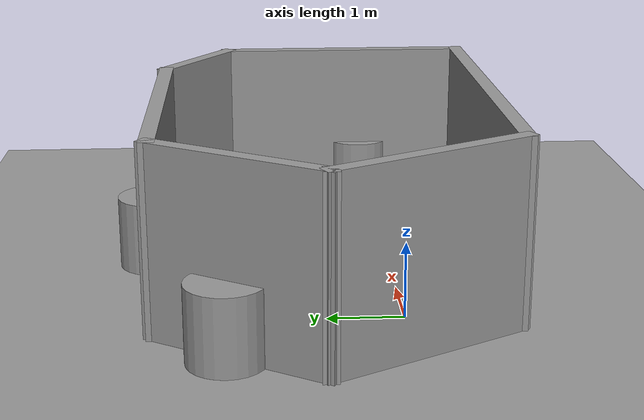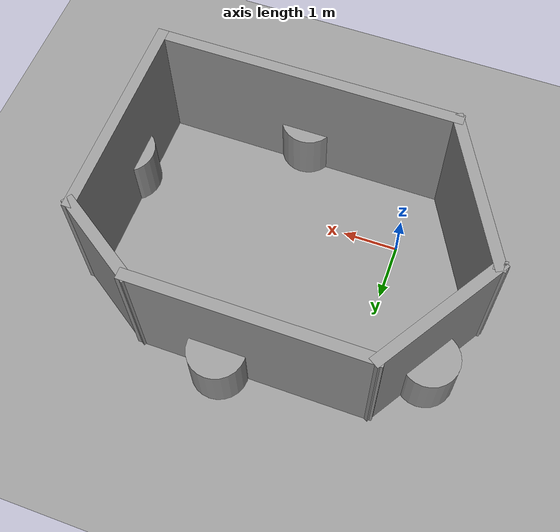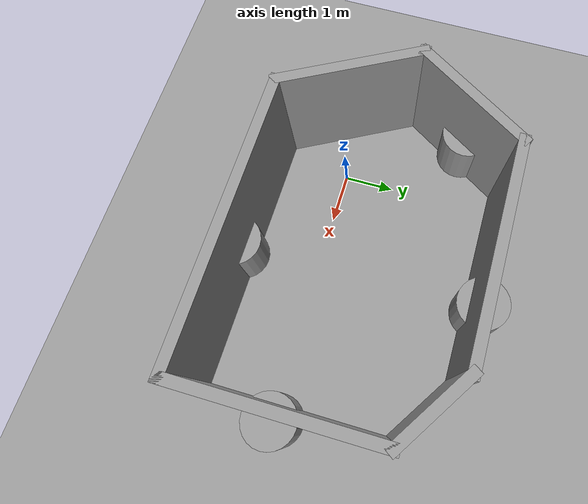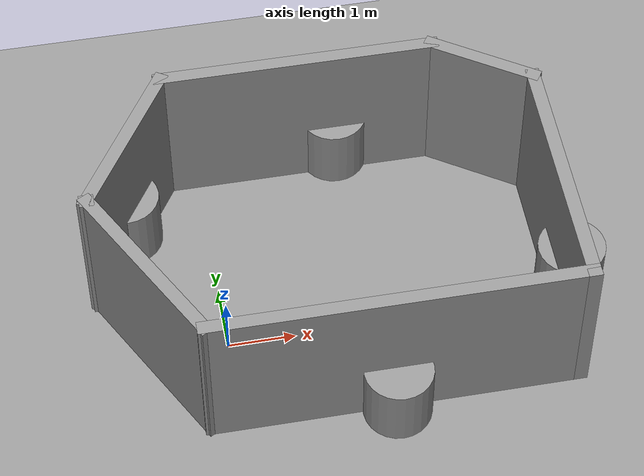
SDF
<sdf version="1.4">
 <world name="default">
  <light name="sun" type="directional">
   <pose>0 0 10 0 -0 0</pose>
   <diffuse>0.8 0.8 0.8 1</diffuse>
   <specular>0.2 0.2 0.2 1</specular>
   <attenuation>
    <range>1000</range>
    <constant>0.9</constant>
    <linear>0.01</linear>
    <quadratic>0.001</quadratic>
   </attenuation>
   <direction>0.5 0.1 -0.9</direction>
  </light>
  <scene><ambient>0.4 0.4 0.4 1</ambient><background>0.7 0.7 0.7 1</background><shadows>1</shadows></scene>
  <physics type="ode">
   <max_step_size>0.01</max_step_size>
   <real_time_factor>1</real_time_factor>
   <real_time_update_rate>100</real_time_update_rate>
   <gravity>0 0 -9.8</gravity>
  </physics>
  <model name="ground_plane_0">
   <static>1</static>
   <link name="link">
    <collision name="collision">
     <geometry><plane><normal>0 0 1</normal><size>100 100</size></plane></geometry>
     <surface><friction><ode><mu>100</mu><mu2>50</mu2></ode></friction></surface>
    </collision>
    <visual name="visual">
     <cast_shadows>0</cast_shadows>
     <geometry><plane><normal>0 0 1</normal><size>100 100</size></plane></geometry>
     <material>
      <script><uri>file://media/materials/scripts/gazebo.material</uri><name>Gazebo/Grey</name></script>
     </material>
    </visual>
    <velocity_decay><linear>0</linear><angular>0</angular></velocity_decay>
   </link>
   <pose>0.497681 0 0 0 -0 0</pose>
  </model>
  <model name="model">
   <link name="Wall_10">
    <collision name="Wall_10_Collision">
     <geometry><box><size>2.64992 0.2 2.5</size></box></geometry>
     <pose>0 0 1.25 0 -0 0</pose>
    </collision>
    <visual name="Wall_10_Visual">
     <pose>0 0 1.25 0 -0 0</pose>
     <geometry><box><size>2.64992 0.2 2.5</size></box></geometry>
     <material>
      <script><uri>file://media/materials/scripts/gazebo.material</uri><name>Gazebo/Grey</name></script>
     </material>
    </visual>
    <velocity_decay><linear>0</linear><angular>0</angular></velocity_decay>
    <pose>-1.10212 2.09247 0 0 0 -2.13092</pose>
   </link>
   <link name="Wall_11">
    <collision name="Wall_11_Collision">
     <geometry><box><size>0.21 0.2 2.5</size></box></geometry>
     <pose>0 0 1.25 0 -0 0</pose>
    </collision>
    <visual name="Wall_11_Visual">
     <pose>0 0 1.25 0 -0 0</pose>
     <geometry><box><size>0.21 0.2 2.5</size></box></geometry>
     <material>
      <script><uri>file://media/materials/scripts/gazebo.material</uri><name>Gazebo/Grey</name></script>
     </material>
    </visual>
    <velocity_decay><linear>0</linear><angular>0</angular></velocity_decay>
    <pose>-1.74793 1.0547 0 0 -0 0</pose>
   </link>
   <link name="Wall_12">
    <collision name="Wall_12_Collision">
     <geometry><box><size>2.95484 0.2 2.5</size></box></geometry>
     <pose>0 0 1.25 0 -0 0</pose>
    </collision>
    <visual name="Wall_12_Visual">
     <pose>0 0 1.25 0 -0 0</pose>
     <geometry><box><size>2.95484 0.2 2.5</size></box></geometry>
     <material>
      <script><uri>file://media/materials/scripts/gazebo.material</uri><name>Gazebo/Grey</name></script>
     </material>
    </visual>
    <velocity_decay><linear>0</linear><angular>0</angular></velocity_decay>
    <pose>-1.08868 -0.157419 0 0 0 -1.07585</pose>
   </link>
   <link name="Wall_6">
    <collision name="Wall_6_Collision">
     <geometry><box><size>5.56546 0.2 2.5</size></box></geometry>
     <pose>0 0 1.25 0 -0 0</pose>
    </collision>
    <visual name="Wall_6_Visual">
     <pose>0 0 1.25 0 -0 0</pose>
     <geometry><box><size>5.56546 0.2 2.5</size></box></geometry>
     <material>
      <script><uri>file://media/materials/scripts/gazebo.material</uri><name>Gazebo/Grey</name></script>
     </material>
    </visual>
    <velocity_decay><linear>0</linear><angular>0</angular></velocity_decay>
    <pose>2.2483 -1.36954 0 0 -0 0</pose>
   </link>
   <link name="Wall_7">
    <collision name="Wall_7_Collision">
     <geometry><box><size>3.82032 0.2 2.5</size></box></geometry>
     <pose>0 0 1.25 0 -0 0</pose>
    </collision>
    <visual name="Wall_7_Visual">
     <pose>0 0 1.25 0 -0 0</pose>
     <geometry><box><size>3.82032 0.2 2.5</size></box></geometry>
     <material>
      <script><uri>file://media/materials/scripts/gazebo.material</uri><name>Gazebo/Grey</name></script>
     </material>
    </visual>
    <velocity_decay><linear>0</linear><angular>0</angular></velocity_decay>
    <pose>4.93103 0.44062 0 0 -0 1.5708</pose>
   </link>
   <link name="Wall_8">
    <collision name="Wall_8_Collision">
     <geometry><box><size>1.80015 0.2 2.5</size></box></geometry>
     <pose>0 0 1.25 0 -0 0</pose>
    </collision>
    <visual name="Wall_8_Visual">
     <pose>0 0 1.25 0 -0 0</pose>
     <geometry><box><size>1.80015 0.2 2.5</size></box></geometry>
     <material>
      <script><uri>file://media/materials/scripts/gazebo.material</uri><name>Gazebo/Grey</name></script>
     </material>
    </visual>
    <velocity_decay><linear>0</linear><angular>0</angular></velocity_decay>
    <pose>4.26264 2.69051 0 0 -0 2.55969</pose>
   </link>
   <link name="Wall_9">
    <collision name="Wall_9_Collision">
     <geometry><box><size>4.24556 0.2 2.5</size></box></geometry>
     <pose>0 0 1.25 0 -0 0</pose>
    </collision>
    <visual name="Wall_9_Visual">
     <pose>0 0 1.25 0 -0 0</pose>
     <geometry><box><size>4.24556 0.2 2.5</size></box></geometry>
     <material>
      <script><uri>file://media/materials/scripts/gazebo.material</uri><name>Gazebo/Grey</name></script>
     </material>
    </visual>
    <velocity_decay><linear>0</linear><angular>0</angular></velocity_decay>
    <pose>1.57146 3.13025 0 0 -0 3.14159</pose>
   </link>
   <static>1</static>
  </model>
  <model name="unit_cylinder_1">
   <pose>-1.17538 2.2377 0.50002 -0.000397 0.000342 -0.001661</pose>
   <link name="link">
    <inertial>
     <mass>1</mass>
     <inertia><ixx>1</ixx><ixy>0</ixy><ixz>0</ixz><iyy>1</iyy><iyz>0</iyz><izz>1</izz></inertia>
    </inertial>
    <collision name="collision">
     <geometry><cylinder><radius>0.0389724</radius><length>1</length></cylinder></geometry>
    </collision>
    <visual name="visual">
     <geometry><cylinder><radius>0.5</radius><length>1</length></cylinder></geometry>
     <material>
      <script><uri>file://media/materials/scripts/gazebo.material</uri><name>Gazebo/Grey</name></script>
     </material>
    </visual>
    <velocity_decay><linear>0</linear><angular>0</angular></velocity_decay>
   </link>
   <static>0</static>
  </model>
  <model name="unit_cylinder_2">
   <pose>2.14517 3.27431 0.499137 -0.000343 -0.000125 -4.1e-05</pose>
   <link name="link">
    <inertial>
     <mass>1</mass>
     <inertia><ixx>1</ixx><ixy>0</ixy><ixz>0</ixz><iyy>1</iyy><iyz>0</iyz><izz>1</izz></inertia>
    </inertial>
    <collision name="collision">
     <geometry><cylinder><radius>0.0437883</radius><length>1</length></cylinder></geometry>
    </collision>
    <visual name="visual">
     <geometry><cylinder><radius>0.5</radius><length>1</length></cylinder></geometry>
     <material>
      <script><uri>file://media/materials/scripts/gazebo.material</uri><name>Gazebo/Grey</name></script>
     </material>
    </visual>
    <velocity_decay><linear>0</linear><angular>0</angular></velocity_decay>
   </link>
   <static>0</static>
  </model>
  <model name="unit_cylinder_4">
   <pose>2.22547 -1.51416 0.499132 -9e-05 8.9e-05 0.001008</pose>
   <link name="link">
    <inertial>
     <mass>1</mass>
     <inertia><ixx>1</ixx><ixy>0</ixy><ixz>0</ixz><iyy>1</iyy><iyz>0</iyz><izz>1</izz></inertia>
    </inertial>
    <collision name="collision">
     <geometry><cylinder><radius>0.0445439</radius><length>1</length></cylinder></geometry>
    </collision>
    <visual name="visual">
     <geometry><cylinder><radius>0.5</radius><length>1</length></cylinder></geometry>
     <material>
      <script><uri>file://media/materials/scripts/gazebo.material</uri><name>Gazebo/Grey</name></script>
     </material>
    </visual>
    <velocity_decay><linear>0</linear><angular>0</angular></velocity_decay>
   </link>
   <static>0</static>
  </model>
  <model name="unit_cylinder_5">
   <pose>5.12882 0.174711 0.499143 -0.000329 4.1e-05 -8.2e-05</pose>
   <link name="link">
    <inertial>
     <mass>1</mass>
     <inertia><ixx>1</ixx><ixy>0</ixy><ixz>0</ixz><iyy>1</iyy><iyz>0</iyz><izz>1</izz></inertia>
    </inertial>
    <collision name="collision">
     <geometry><cylinder><radius>0.0384044</radius><length>1</length></cylinder></geometry>
    </collision>
    <visual name="visual">
     <geometry><cylinder><radius>0.5</radius><length>1</length></cylinder></geometry>
     <material>
      <script><uri>file://media/materials/scripts/gazebo.material</uri><name>Gazebo/Grey</name></script>
     </material>
    </visual>
    <velocity_decay><linear>0</linear><angular>0</angular></velocity_decay>
   </link>
   <static>0</static>
  </model>
  <spherical_coordinates>
   <surface_model>EARTH_WGS84</surface_model>
   <latitude_deg>0</latitude_deg>
   <longitude_deg>0</longitude_deg>
   <elevation>0</elevation>
   <heading_deg>0</heading_deg>
  </spherical_coordinates>
 </world>
</sdf>
